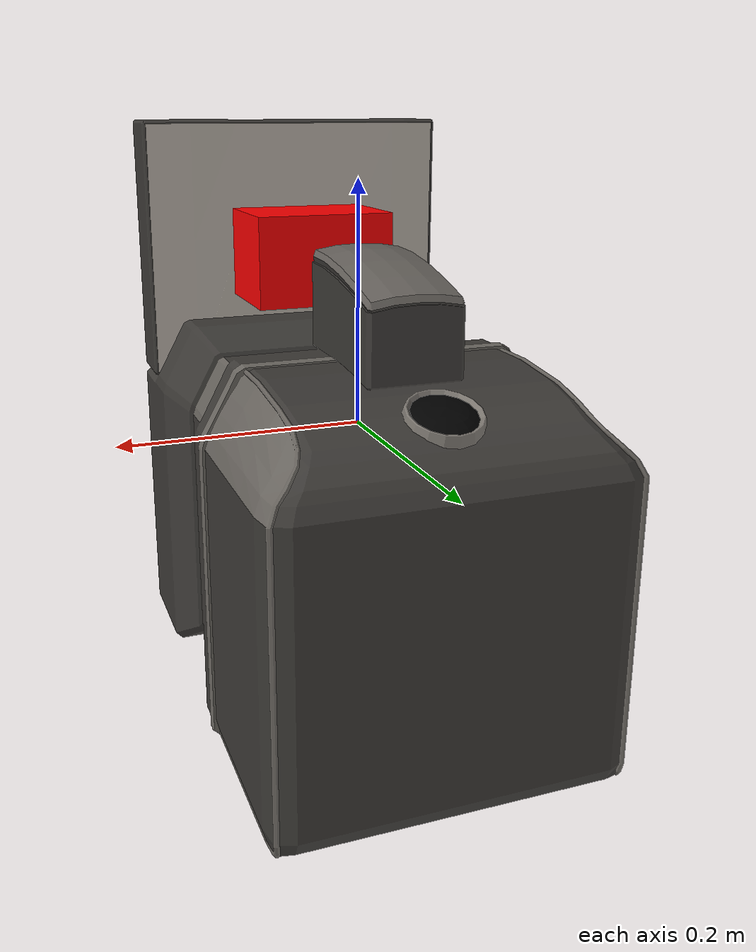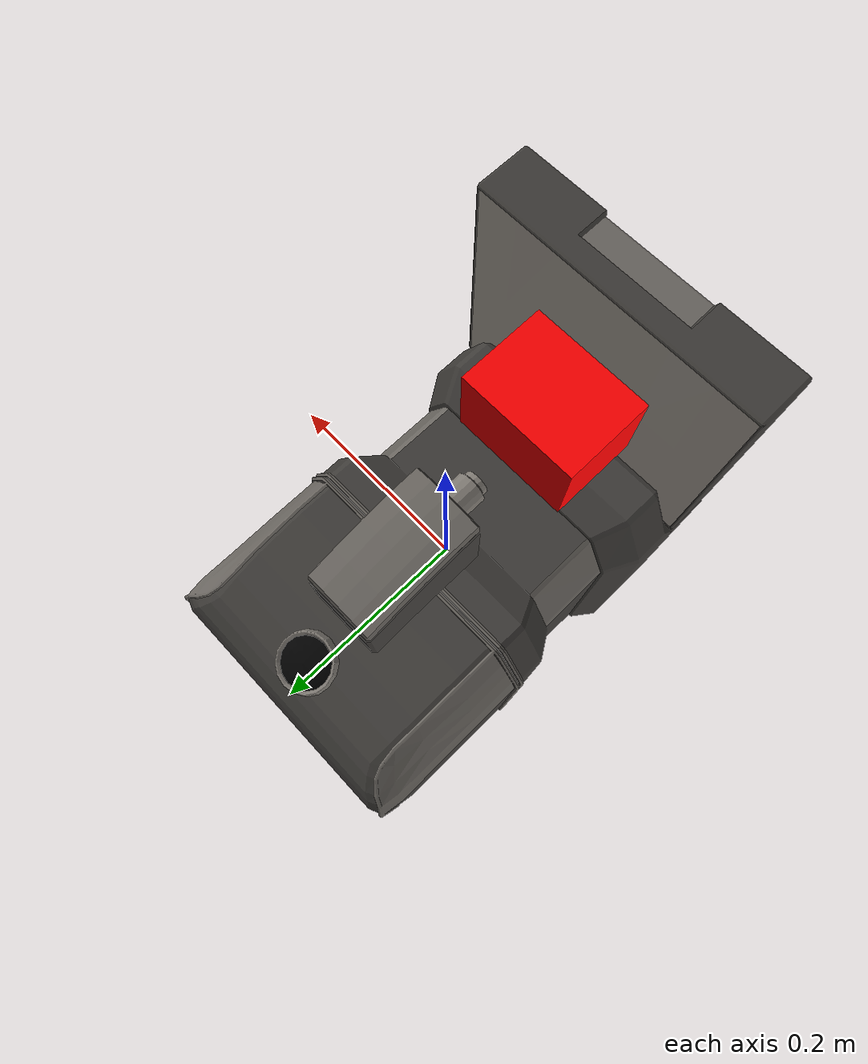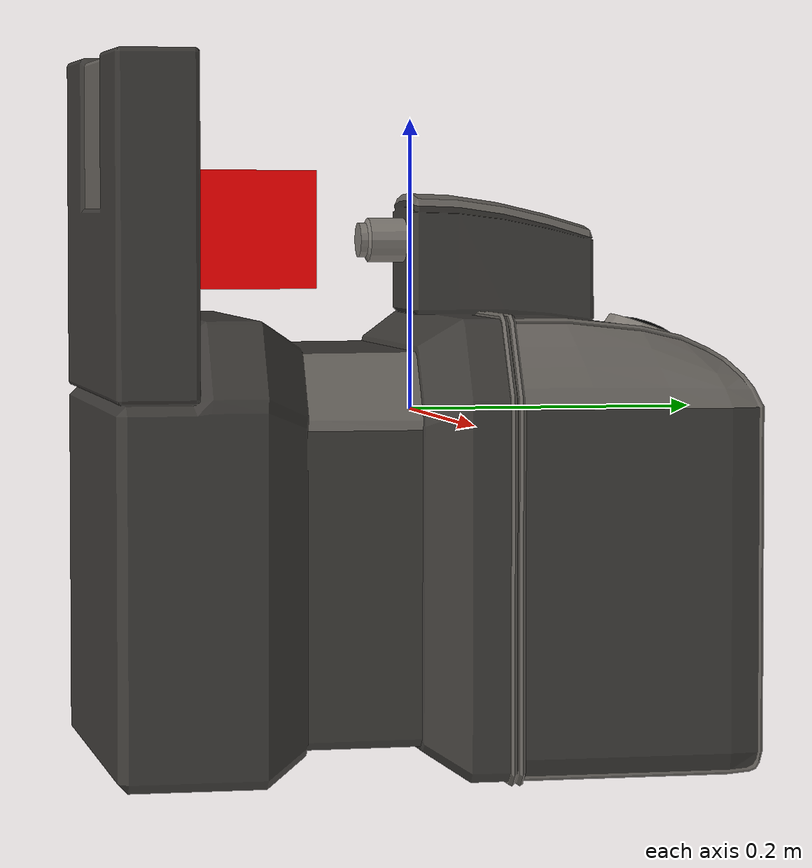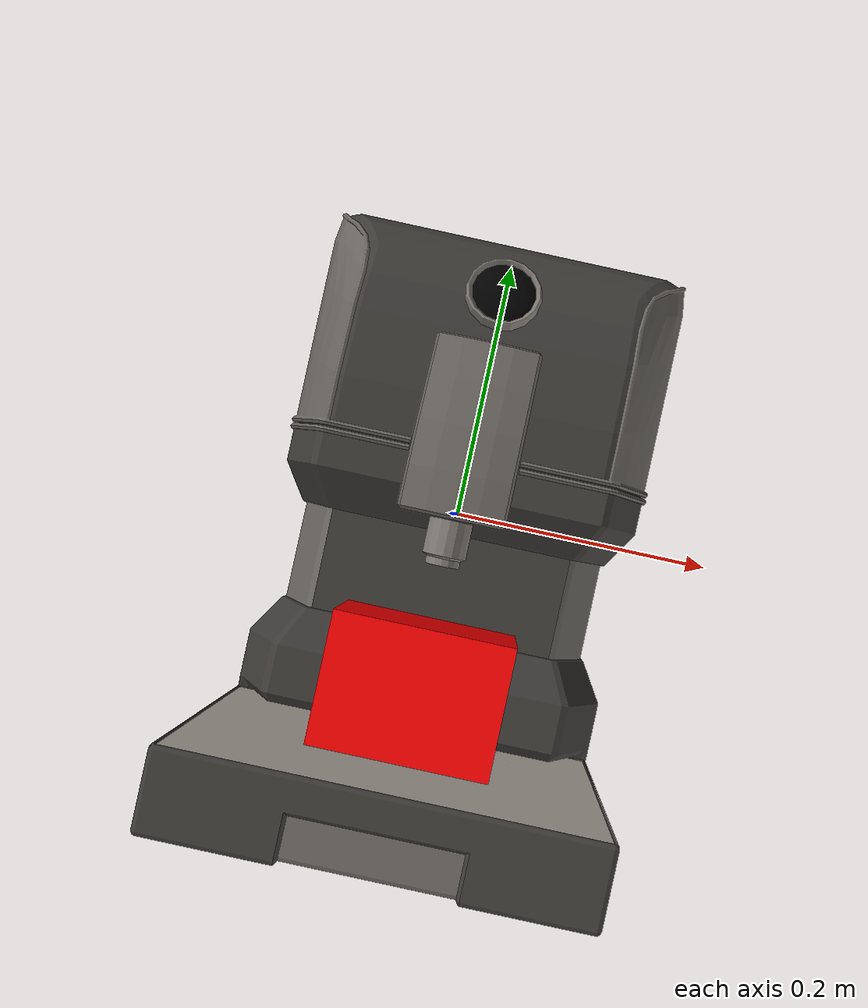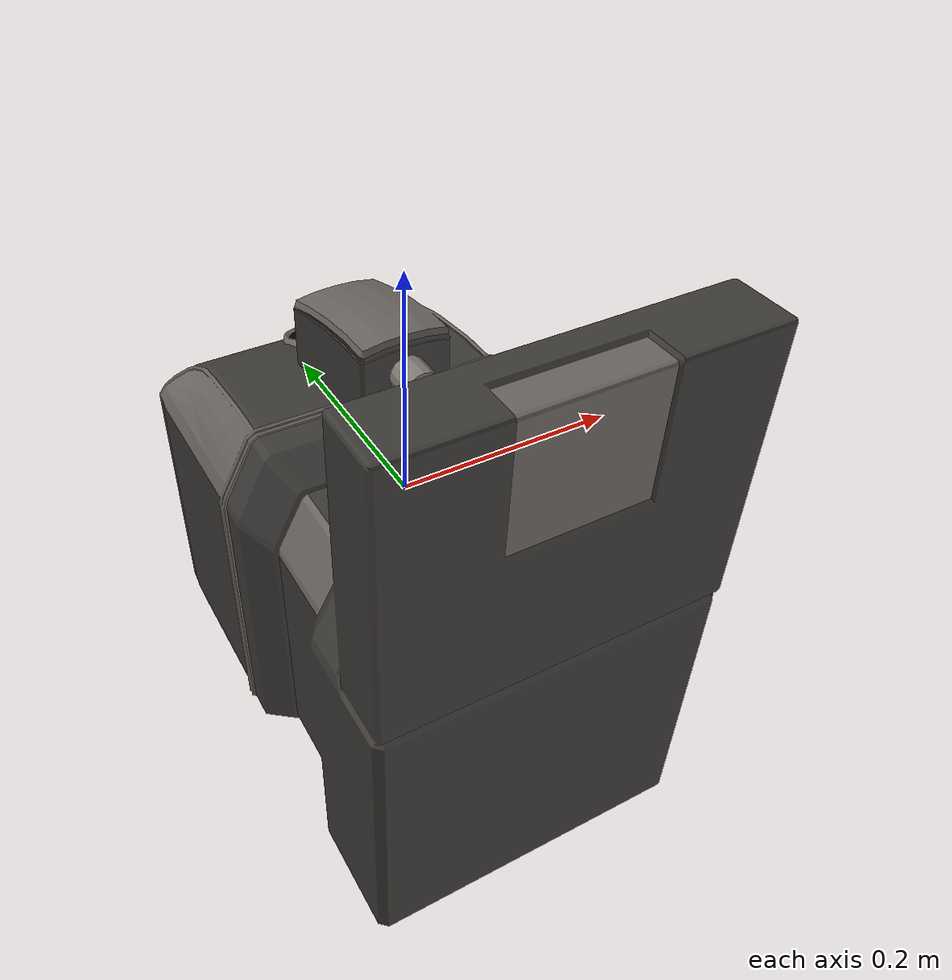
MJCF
<mujoco model="coffee_machine_5">
  <compiler autolimits="true" boundmass="0.01" angle="radian"/>
  <default>
    <default class="/">
      <default class="__VISUAL_MJT__">
        <geom contype="0" conaffinity="0" group="0"/>
      </default>
      <default class="__STRUCTURAL_MJT__">
        <geom contype="8" conaffinity="15" group="4" friction="0.90000000000000002 0.90000000000000002 0.001" solref="0.025000000000000001 1" solimp="0.998 0.998 0.001"/>
      </default>
      <default class="__DYNAMIC_MJT__">
        <geom contype="1" conaffinity="15" group="4" friction="0.90000000000000002 0.90000000000000002 0.001" solref="0.025000000000000001 1" solimp="0.998 0.998 0.001"/>
      </default>
    </default>
  </default>
  <asset>
    <material name="material_coffee_machine_backup_mat" class="/" specular="0.5" shininess="0.5" rgba="0.5 0.5 0.5 1"/>
    <material name="material_Coffee_Machine_Readout_Mat_Off" class="/" specular="0.5" shininess="0.5" rgba="0 0 0 1"/>
    <texture name="Coffee_Machine_Decal_Mat" type="2d" file="Coffee_Machine_Decal_AlbedoTransparency.png"/>
    <material name="material_Coffee_Machine_Decal_Mat" class="/" texture="Coffee_Machine_Decal_Mat" specular="0.5" shininess="0.5" rgba="1 1 1 1"/>
    <texture name="Coffee_Machine_Metal_Mat" type="2d" file="MetalBumpy_AlbedoTransparency.png"/>
    <material name="material_Coffee_Machine_Metal_Mat" class="/" texture="Coffee_Machine_Metal_Mat" specular="0.5" shininess="0.5" rgba="0.66176469999999998 0.66176469999999998 0.66176469999999998 1"/>
    <texture name="Coffee_Machine_Secondary5_Color_Mat" type="2d" file="BrushedIron_AlbedoTransparency.png"/>
    <material name="material_Coffee_Machine_Secondary5_Color_Mat" class="/" texture="Coffee_Machine_Secondary5_Color_Mat" specular="0.5" shininess="0.5" rgba="0.55147060000000003 0.55147060000000003 0.55147060000000003 1"/>
    <texture name="Coffee_Machine_Primary5_Color_Mat" type="2d" file="BrushedAluminum_AlbedoTransparency.png"/>
    <material name="material_Coffee_Machine_Primary5_Color_Mat" class="/" texture="Coffee_Machine_Primary5_Color_Mat" specular="0.5" shininess="0.5" rgba="0.32352940000000002 0.32352940000000002 0.32352940000000002 1"/>
    <mesh name="coffee_machine_5_coffee_machine_5_0" class="/" file="coffee_machine_5_coffee_machine_5/coffee_machine_5_coffee_machine_5_0.obj" scale="1 1 1"/>
    <mesh name="coffee_machine_5_coffee_machine_5_1" class="/" file="coffee_machine_5_coffee_machine_5/coffee_machine_5_coffee_machine_5_1.obj" scale="1 1 1"/>
    <mesh name="coffee_machine_5_coffee_machine_5_2" class="/" file="coffee_machine_5_coffee_machine_5/coffee_machine_5_coffee_machine_5_2.obj" scale="1 1 1"/>
    <mesh name="coffee_machine_5_coffee_machine_5_3" class="/" file="coffee_machine_5_coffee_machine_5/coffee_machine_5_coffee_machine_5_3.obj" scale="1 1 1"/>
    <mesh name="coffee_machine_5_coffee_machine_5_4" class="/" file="coffee_machine_5_coffee_machine_5/coffee_machine_5_coffee_machine_5_4.obj" scale="1 1 1"/>
    <mesh name="coffee_machine_5_coffee_machine_5_5" class="/" file="coffee_machine_5_coffee_machine_5/coffee_machine_5_coffee_machine_5_5.obj" scale="1 1 1"/>
  </asset>
  <worldbody>
    <body name="coffee_machine_5">
      <joint name="coffee_machine_5_free" class="/" type="free" pos="0 0 0" axis="0 0 1" stiffness="0" range="0 0" armature="0" damping="0.10000000000000001" frictionloss="0"/>
      <body name="coffee_machine_5_coffee_machine_5" pos="-0 -0.22112000000000001 -0.10635" quat="1 0 0 0">
        <geom name="coffee_machine_5_coffee_machine_5_0" class="__VISUAL_MJT__" type="mesh" material="material_coffee_machine_backup_mat" shellinertia="true" mesh="coffee_machine_5_coffee_machine_5_0"/>
        <geom name="coffee_machine_5_coffee_machine_5_1" class="__VISUAL_MJT__" type="mesh" material="material_Coffee_Machine_Readout_Mat_Off" shellinertia="false" mesh="coffee_machine_5_coffee_machine_5_1"/>
        <geom name="coffee_machine_5_coffee_machine_5_2" class="__VISUAL_MJT__" type="mesh" material="material_Coffee_Machine_Decal_Mat" shellinertia="false" mesh="coffee_machine_5_coffee_machine_5_2"/>
        <geom name="coffee_machine_5_coffee_machine_5_3" class="__VISUAL_MJT__" type="mesh" material="material_Coffee_Machine_Metal_Mat" shellinertia="false" mesh="coffee_machine_5_coffee_machine_5_3"/>
        <geom name="coffee_machine_5_coffee_machine_5_4" class="__VISUAL_MJT__" type="mesh" material="material_Coffee_Machine_Secondary5_Color_Mat" shellinertia="false" mesh="coffee_machine_5_coffee_machine_5_4"/>
        <geom name="coffee_machine_5_coffee_machine_5_5" class="__VISUAL_MJT__" type="mesh" material="material_Coffee_Machine_Primary5_Color_Mat" shellinertia="false" mesh="coffee_machine_5_coffee_machine_5_5"/>
        <site name="coffee_machine_5_Receptacle_0" class="/" type="box" rgba="1 0 0 1" size="0.061056312173604965 0.044977307319641113 0.039708007127046585" pos="-0 0.099677309393882751 0.23102244734764099" quat="1 0 0 0"/>
        <geom name="coffee_machine_5_PrimitiveCollider_0" class="__DYNAMIC_MJT__" type="box" size="0.14734183251857758 0.22112220525741577 0.15702545642852783" rgba="0 1 0 1" pos="-0 0.22112220525741577 0.019488334655761719" quat="1 0 0 0"/>
        <geom name="coffee_machine_5_PrimitiveCollider_1" class="__DYNAMIC_MJT__" type="box" size="0.14734183251857758 0.028035283088684082 0.11621034145355225" rgba="0 1 0 1" pos="-0 0.028035283088684082 0.23402941226959229" quat="1 0 0 0"/>
        <geom name="coffee_machine_5_PrimitiveCollider_2" class="__DYNAMIC_MJT__" type="box" size="0.039006814360618591 0.063094377517700195 0.048185139894485474" rgba="0 1 0 1" pos="-0 0.28077507019042969 0.20786586403846741" quat="1 0 0 0"/>
      </body>
    </body>
  </worldbody>
</mujoco>
